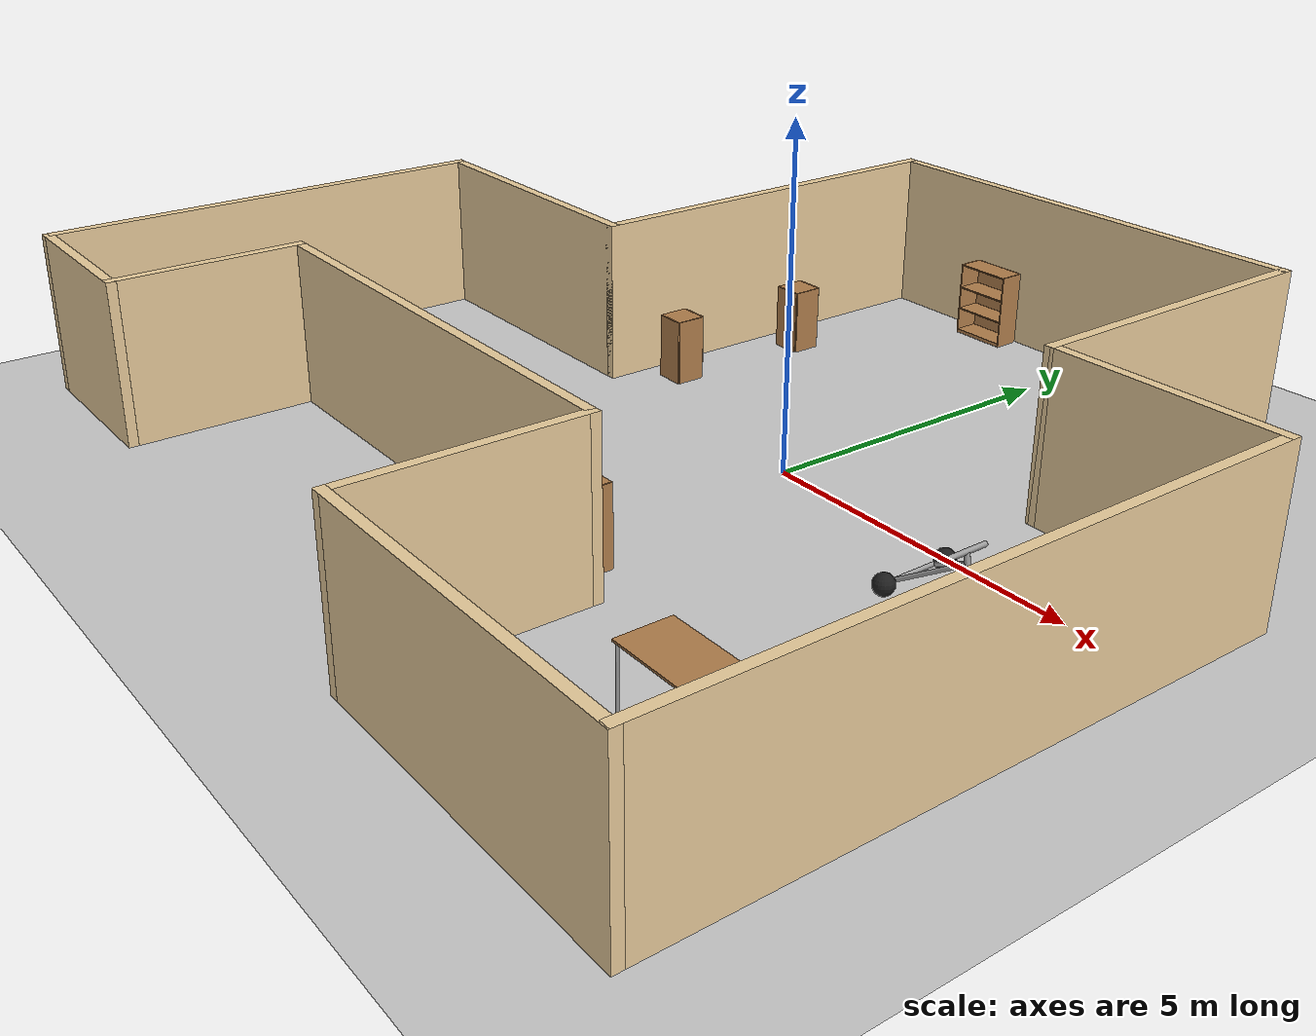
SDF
<sdf version="1.6">
 <world name="default">
  <light name="sun" type="directional">
   <pose>0 0 10 0 -0 0</pose>
   <diffuse>0.8 0.8 0.8 1</diffuse>
   <specular>0.2 0.2 0.2 1</specular>
   <attenuation>
    <range>1000</range>
    <constant>0.9</constant>
    <linear>0.01</linear>
    <quadratic>0.001</quadratic>
   </attenuation>
   <direction>-0.5 0.1 -0.9</direction>
  </light>
  <model name="ground_plane">
   <static>1</static>
   <link name="link">
    <collision name="collision">
     <geometry><plane><normal>0 0 1</normal><size>100 100</size></plane></geometry>
     <surface>
      <contact><collide_bitmask>65535</collide_bitmask></contact>
      <friction><ode><mu>100</mu><mu2>50</mu2></ode></friction>
     </surface>
    </collision>
    <visual name="visual">
     <cast_shadows>0</cast_shadows>
     <geometry><plane><normal>0 0 1</normal><size>100 100</size></plane></geometry>
     <material>
      <script><uri>file://media/materials/scripts/gazebo.material</uri><name>Gazebo/Grey</name></script>
     </material>
    </visual>
   </link>
  </model>
  <gravity>0 0 -9.8</gravity>
  <magnetic_field>6e-06 2.3e-05 -4.2e-05</magnetic_field>
  <atmosphere type="adiabatic"/>
  <physics name="default_physics" default="0" type="ode">
   <max_step_size>0.001</max_step_size>
   <real_time_factor>1</real_time_factor>
   <real_time_update_rate>1000</real_time_update_rate>
  </physics>
  <scene><ambient>0.4 0.4 0.4 1</ambient><background>0.7 0.7 0.7 1</background><shadows>1</shadows></scene>
  <spherical_coordinates>
   <surface_model>EARTH_WGS84</surface_model>
   <latitude_deg>0</latitude_deg>
   <longitude_deg>0</longitude_deg>
   <elevation>0</elevation>
   <heading_deg>0</heading_deg>
  </spherical_coordinates>
  <model name="building_big">
   <pose>-1.21774 -0.477666 0 0 -0 0</pose>
   <link name="Wall_19">
    <collision name="Wall_19_Collision">
     <geometry><box><size>7.5 0.15 2.5</size></box></geometry>
     <pose>0 0 1.25 0 -0 0</pose>
    </collision>
    <visual name="Wall_19_Visual">
     <pose>0 0 1.25 0 -0 0</pose>
     <geometry><box><size>7.5 0.15 2.5</size></box></geometry>
     <material>
      <script><uri>file://media/materials/scripts/gazebo.material</uri><name>Gazebo/Grey</name></script>
      <ambient>0.921569 0.807843 0.615686 1</ambient>
     </material>
     <meta><layer>0</layer></meta>
    </visual>
    <pose>0.625 6.975 0 0 -0 0</pose>
   </link>
   <link name="Wall_20">
    <collision name="Wall_20_Collision">
     <geometry><box><size>5 0.15 2.5</size></box></geometry>
     <pose>0 0 1.25 0 -0 0</pose>
    </collision>
    <visual name="Wall_20_Visual">
     <pose>0 0 1.25 0 -0 0</pose>
     <geometry><box><size>5 0.15 2.5</size></box></geometry>
     <material>
      <script><uri>file://media/materials/scripts/gazebo.material</uri><name>Gazebo/Grey</name></script>
      <ambient>0.921569 0.807843 0.615686 1</ambient>
     </material>
     <meta><layer>0</layer></meta>
    </visual>
    <pose>4.3 4.55 0 0 0 -1.5708</pose>
   </link>
   <link name="Wall_21">
    <collision name="Wall_21_Collision">
     <geometry><box><size>3.5 0.15 2.5</size></box></geometry>
     <pose>0 0 1.25 0 -0 0</pose>
    </collision>
    <visual name="Wall_21_Visual">
     <pose>0 0 1.25 0 -0 0</pose>
     <geometry><box><size>3.5 0.15 2.5</size></box></geometry>
     <material>
      <script><uri>file://media/materials/scripts/gazebo.material</uri><name>Gazebo/Grey</name></script>
      <ambient>0.921569 0.807843 0.615686 1</ambient>
     </material>
     <meta><layer>0</layer></meta>
    </visual>
    <pose>5.975 2.125 0 0 -0 0</pose>
   </link>
   <link name="Wall_22">
    <collision name="Wall_22_Collision">
     <geometry><box><size>9.25 0.15 2.5</size></box></geometry>
     <pose>0 0 1.25 0 -0 0</pose>
    </collision>
    <visual name="Wall_22_Visual">
     <pose>0 0 1.25 0 -0 0</pose>
     <geometry><box><size>9.25 0.15 2.5</size></box></geometry>
     <material>
      <script><uri>file://media/materials/scripts/gazebo.material</uri><name>Gazebo/Grey</name></script>
      <ambient>0.921569 0.807843 0.615686 1</ambient>
     </material>
     <meta><layer>0</layer></meta>
    </visual>
    <pose>7.65 -2.425 0 0 0 -1.5708</pose>
   </link>
   <link name="Wall_23">
    <collision name="Wall_23_Collision">
     <geometry><box><size>5.25 0.15 2.5</size></box></geometry>
     <pose>0 0 1.25 0 -0 0</pose>
    </collision>
    <visual name="Wall_23_Visual">
     <pose>0 0 1.25 0 -0 0</pose>
     <geometry><box><size>5.25 0.15 2.5</size></box></geometry>
     <material>
      <script><uri>file://media/materials/scripts/gazebo.material</uri><name>Gazebo/Grey</name></script>
      <ambient>0.921569 0.807843 0.615686 1</ambient>
     </material>
     <meta><layer>0</layer></meta>
    </visual>
    <pose>5.1 -6.975 0 0 -0 3.14159</pose>
   </link>
   <link name="Wall_24">
    <collision name="Wall_24_Collision">
     <geometry><box><size>3.5 0.15 2.5</size></box></geometry>
     <pose>0 0 1.25 0 -0 0</pose>
    </collision>
    <visual name="Wall_24_Visual">
     <pose>0 0 1.25 0 -0 0</pose>
     <geometry><box><size>3.5 0.15 2.5</size></box></geometry>
     <material>
      <script><uri>file://media/materials/scripts/gazebo.material</uri><name>Gazebo/Grey</name></script>
      <ambient>0.921569 0.807843 0.615686 1</ambient>
     </material>
     <meta><layer>0</layer></meta>
    </visual>
    <pose>2.55 -5.3 0 0 -0 1.5708</pose>
   </link>
   <link name="Wall_25">
    <collision name="Wall_25_Collision">
     <geometry><box><size>7.75 0.15 2.5</size></box></geometry>
     <pose>0 0 1.25 0 -0 0</pose>
    </collision>
    <visual name="Wall_25_Visual">
     <pose>0 0 1.25 0 -0 0</pose>
     <geometry><box><size>7.75 0.15 2.5</size></box></geometry>
     <material>
      <script><uri>file://media/materials/scripts/gazebo.material</uri><name>Gazebo/Grey</name></script>
      <ambient>0.921569 0.807843 0.615686 1</ambient>
     </material>
     <meta><layer>0</layer></meta>
    </visual>
    <pose>-1.25 -3.625 0 0 -0 3.14159</pose>
   </link>
   <link name="Wall_26">
    <collision name="Wall_26_Collision">
     <geometry><box><size>3 0.15 2.5</size></box></geometry>
     <pose>0 0 1.25 0 -0 0</pose>
    </collision>
    <visual name="Wall_26_Visual">
     <pose>0 0 1.25 0 -0 0</pose>
     <geometry><box><size>3 0.15 2.5</size></box></geometry>
     <material>
      <script><uri>file://media/materials/scripts/gazebo.material</uri><name>Gazebo/Grey</name></script>
      <ambient>0.921569 0.807843 0.615686 1</ambient>
     </material>
     <meta><layer>0</layer></meta>
    </visual>
    <pose>-5.05 -5.05 0 0 0 -1.5708</pose>
   </link>
   <link name="Wall_27">
    <collision name="Wall_27_Collision">
     <geometry><box><size>2.75 0.15 2.5</size></box></geometry>
     <pose>0 0 1.25 0 -0 0</pose>
    </collision>
    <visual name="Wall_27_Visual">
     <pose>0 0 1.25 0 -0 0</pose>
     <geometry><box><size>2.75 0.15 2.5</size></box></geometry>
     <material>
      <script><uri>file://media/materials/scripts/gazebo.material</uri><name>Gazebo/Grey</name></script>
      <ambient>0.921569 0.807843 0.615686 1</ambient>
     </material>
     <meta><layer>0</layer></meta>
    </visual>
    <pose>-6.35 -6.475 0 0 -0 3.14159</pose>
   </link>
   <link name="Wall_28">
    <collision name="Wall_28_Collision">
     <geometry><box><size>7.25 0.15 2.5</size></box></geometry>
     <pose>0 0 1.25 0 -0 0</pose>
    </collision>
    <visual name="Wall_28_Visual">
     <pose>0 0 1.25 0 -0 0</pose>
     <geometry><box><size>7.25 0.15 2.5</size></box></geometry>
     <material>
      <script><uri>file://media/materials/scripts/gazebo.material</uri><name>Gazebo/Grey</name></script>
      <ambient>0.921569 0.807843 0.615686 1</ambient>
     </material>
     <meta><layer>0</layer></meta>
    </visual>
    <pose>-7.65 -2.925 0 0 -0 1.5708</pose>
   </link>
   <link name="Wall_29">
    <collision name="Wall_29_Collision">
     <geometry><box><size>4.75 0.15 2.5</size></box></geometry>
     <pose>0 0 1.25 0 -0 0</pose>
    </collision>
    <visual name="Wall_29_Visual">
     <pose>0 0 1.25 0 -0 0</pose>
     <geometry><box><size>4.75 0.15 2.5</size></box></geometry>
     <material>
      <script><uri>file://media/materials/scripts/gazebo.material</uri><name>Gazebo/Grey</name></script>
      <ambient>0.921569 0.807843 0.615686 1</ambient>
     </material>
     <meta><layer>0</layer></meta>
    </visual>
    <pose>-5.35 0.625 0 0 -0 0</pose>
   </link>
   <link name="Wall_30">
    <collision name="Wall_30_Collision">
     <geometry><box><size>6.5 0.15 2.5</size></box></geometry>
     <pose>0 0 1.25 0 -0 0</pose>
    </collision>
    <visual name="Wall_30_Visual">
     <pose>0 0 1.25 0 -0 0</pose>
     <geometry><box><size>6.5 0.15 2.5</size></box></geometry>
     <material>
      <script><uri>file://media/materials/scripts/gazebo.material</uri><name>Gazebo/Grey</name></script>
      <ambient>0.921569 0.807843 0.615686 1</ambient>
     </material>
     <meta><layer>0</layer></meta>
    </visual>
    <pose>-3.05 3.8 0 0 -0 1.5708</pose>
   </link>
   <static>1</static>
  </model>
  <model name="cabinet">
   <static>1</static>
   <link name="cabinet_bottom_plate">
    <inertial>
     <pose>0 0 -1 0 -0 0</pose>
     <inertia><ixx>2.05</ixx><ixy>0</ixy><ixz>0</ixz><iyy>2.05</iyy><iyz>0</iyz><izz>2.05</izz></inertia>
     <mass>25</mass>
    </inertial>
    <collision name="cabinet_bottom_plate_geom">
     <pose>0 0 0.01 0 -0 0</pose>
     <geometry><box><size>0.45 0.45 0.02</size></box></geometry>
    </collision>
    <visual name="cabinet_bottom_plate_geom_visual">
     <pose>0 0 0.01 0 -0 0</pose>
     <geometry><box><size>0.45 0.45 0.02</size></box></geometry>
     <material>
      <script><uri>file://media/materials/scripts/gazebo.material</uri><name>Gazebo/Wood</name></script>
     </material>
    </visual>
    <collision name="cabinet_bottom_plate_geom_cabinet_back_plate">
     <pose>0.235 0 0.51 0 -0 0</pose>
     <geometry><box><size>0.02 0.45 1.02</size></box></geometry>
    </collision>
    <visual name="cabinet_bottom_plate_geom_cabinet_back_plate_visual">
     <pose>0.235 0 0.51 0 -0 0</pose>
     <geometry><box><size>0.02 0.45 1.02</size></box></geometry>
     <material>
      <script><uri>file://media/materials/scripts/gazebo.material</uri><name>Gazebo/Wood</name></script>
     </material>
    </visual>
    <collision name="cabinet_bottom_plate_geom_cabinet_left_plate">
     <pose>0 0.235 0.51 0 -0 0</pose>
     <geometry><box><size>0.45 0.02 1.02</size></box></geometry>
    </collision>
    <visual name="cabinet_bottom_plate_geom_cabinet_left_plate_visual">
     <pose>0 0.235 0.51 0 -0 0</pose>
     <geometry><box><size>0.45 0.02 1.02</size></box></geometry>
     <material>
      <script><uri>file://media/materials/scripts/gazebo.material</uri><name>Gazebo/Wood</name></script>
     </material>
    </visual>
    <collision name="cabinet_bottom_plate_geom_cabinet_middle_plate">
     <pose>0 0 0.51 0 -0 0</pose>
     <geometry><box><size>0.45 0.45 0.02</size></box></geometry>
    </collision>
    <visual name="cabinet_bottom_plate_geom_cabinet_middle_plate_visual">
     <pose>0 0 0.51 0 -0 0</pose>
     <geometry><box><size>0.45 0.45 0.02</size></box></geometry>
     <material>
      <script><uri>file://media/materials/scripts/gazebo.material</uri><name>Gazebo/Wood</name></script>
     </material>
    </visual>
    <collision name="cabinet_bottom_plate_geom_cabinet_right_plate">
     <pose>0 -0.235 0.51 0 -0 0</pose>
     <geometry><box><size>0.45 0.02 1.02</size></box></geometry>
    </collision>
    <visual name="cabinet_bottom_plate_geom_cabinet_right_plate_visual">
     <pose>0 -0.235 0.51 0 -0 0</pose>
     <geometry><box><size>0.45 0.02 1.02</size></box></geometry>
     <material>
      <script><uri>file://media/materials/scripts/gazebo.material</uri><name>Gazebo/Wood</name></script>
     </material>
    </visual>
    <collision name="cabinet_bottom_plate_geom_cabinet_top_plate">
     <pose>0 0 1.01 0 -0 0</pose>
     <geometry><box><size>0.45 0.45 0.02</size></box></geometry>
    </collision>
    <visual name="cabinet_bottom_plate_geom_cabinet_top_plate_visual">
     <pose>0 0 1.01 0 -0 0</pose>
     <geometry><box><size>0.45 0.45 0.02</size></box></geometry>
     <material>
      <script><uri>file://media/materials/scripts/gazebo.material</uri><name>Gazebo/Wood</name></script>
     </material>
    </visual>
   </link>
   <pose>-3.63446 1.01184 0 0 -0 0</pose>
  </model>
  <model name="cabinet_0">
   <static>1</static>
   <link name="cabinet_bottom_plate">
    <inertial>
     <pose>0 0 -1 0 -0 0</pose>
     <inertia><ixx>2.05</ixx><ixy>0</ixy><ixz>0</ixz><iyy>2.05</iyy><iyz>0</iyz><izz>2.05</izz></inertia>
     <mass>25</mass>
    </inertial>
    <collision name="cabinet_bottom_plate_geom">
     <pose>0 0 0.01 0 -0 0</pose>
     <geometry><box><size>0.45 0.45 0.02</size></box></geometry>
    </collision>
    <visual name="cabinet_bottom_plate_geom_visual">
     <pose>0 0 0.01 0 -0 0</pose>
     <geometry><box><size>0.45 0.45 0.02</size></box></geometry>
     <material>
      <script><uri>file://media/materials/scripts/gazebo.material</uri><name>Gazebo/Wood</name></script>
     </material>
    </visual>
    <collision name="cabinet_bottom_plate_geom_cabinet_back_plate">
     <pose>0.235 0 0.51 0 -0 0</pose>
     <geometry><box><size>0.02 0.45 1.02</size></box></geometry>
    </collision>
    <visual name="cabinet_bottom_plate_geom_cabinet_back_plate_visual">
     <pose>0.235 0 0.51 0 -0 0</pose>
     <geometry><box><size>0.02 0.45 1.02</size></box></geometry>
     <material>
      <script><uri>file://media/materials/scripts/gazebo.material</uri><name>Gazebo/Wood</name></script>
     </material>
    </visual>
    <collision name="cabinet_bottom_plate_geom_cabinet_left_plate">
     <pose>0 0.235 0.51 0 -0 0</pose>
     <geometry><box><size>0.45 0.02 1.02</size></box></geometry>
    </collision>
    <visual name="cabinet_bottom_plate_geom_cabinet_left_plate_visual">
     <pose>0 0.235 0.51 0 -0 0</pose>
     <geometry><box><size>0.45 0.02 1.02</size></box></geometry>
     <material>
      <script><uri>file://media/materials/scripts/gazebo.material</uri><name>Gazebo/Wood</name></script>
     </material>
    </visual>
    <collision name="cabinet_bottom_plate_geom_cabinet_middle_plate">
     <pose>0 0 0.51 0 -0 0</pose>
     <geometry><box><size>0.45 0.45 0.02</size></box></geometry>
    </collision>
    <visual name="cabinet_bottom_plate_geom_cabinet_middle_plate_visual">
     <pose>0 0 0.51 0 -0 0</pose>
     <geometry><box><size>0.45 0.45 0.02</size></box></geometry>
     <material>
      <script><uri>file://media/materials/scripts/gazebo.material</uri><name>Gazebo/Wood</name></script>
     </material>
    </visual>
    <collision name="cabinet_bottom_plate_geom_cabinet_right_plate">
     <pose>0 -0.235 0.51 0 -0 0</pose>
     <geometry><box><size>0.45 0.02 1.02</size></box></geometry>
    </collision>
    <visual name="cabinet_bottom_plate_geom_cabinet_right_plate_visual">
     <pose>0 -0.235 0.51 0 -0 0</pose>
     <geometry><box><size>0.45 0.02 1.02</size></box></geometry>
     <material>
      <script><uri>file://media/materials/scripts/gazebo.material</uri><name>Gazebo/Wood</name></script>
     </material>
    </visual>
    <collision name="cabinet_bottom_plate_geom_cabinet_top_plate">
     <pose>0 0 1.01 0 -0 0</pose>
     <geometry><box><size>0.45 0.45 0.02</size></box></geometry>
    </collision>
    <visual name="cabinet_bottom_plate_geom_cabinet_top_plate_visual">
     <pose>0 0 1.01 0 -0 0</pose>
     <geometry><box><size>0.45 0.45 0.02</size></box></geometry>
     <material>
      <script><uri>file://media/materials/scripts/gazebo.material</uri><name>Gazebo/Wood</name></script>
     </material>
    </visual>
   </link>
   <pose>-3.56706 3.36523 0 0 -0 0</pose>
  </model>
  <model name="bookshelf">
   <static>1</static>
   <link name="link">
    <inertial><mass>1</mass></inertial>
    <collision name="back">
     <pose>0 0.005 0.6 0 -0 0</pose>
     <geometry><box><size>0.9 0.01 1.2</size></box></geometry>
    </collision>
    <visual name="visual1">
     <pose>0 0.005 0.6 0 -0 0</pose>
     <geometry><box><size>0.9 0.01 1.2</size></box></geometry>
     <material>
      <script><uri>file://media/materials/scripts/gazebo.material</uri><name>Gazebo/Wood</name></script>
     </material>
    </visual>
    <collision name="left_side">
     <pose>0.45 -0.195 0.6 0 -0 0</pose>
     <geometry><box><size>0.02 0.4 1.2</size></box></geometry>
    </collision>
    <visual name="visual2">
     <pose>0.45 -0.195 0.6 0 -0 0</pose>
     <geometry><box><size>0.02 0.4 1.2</size></box></geometry>
     <material>
      <script><uri>file://media/materials/scripts/gazebo.material</uri><name>Gazebo/Wood</name></script>
     </material>
    </visual>
    <collision name="right_side">
     <pose>-0.45 -0.195 0.6 0 -0 0</pose>
     <geometry><box><size>0.02 0.4 1.2</size></box></geometry>
    </collision>
    <visual name="visual3">
     <pose>-0.45 -0.195 0.6 0 -0 0</pose>
     <geometry><box><size>0.02 0.4 1.2</size></box></geometry>
     <material>
      <script><uri>file://media/materials/scripts/gazebo.material</uri><name>Gazebo/Wood</name></script>
     </material>
    </visual>
    <collision name="bottom">
     <pose>0 -0.195 0.03 0 -0 0</pose>
     <geometry><box><size>0.88 0.4 0.06</size></box></geometry>
    </collision>
    <visual name="visual4">
     <pose>0 -0.195 0.03 0 -0 0</pose>
     <geometry><box><size>0.88 0.4 0.06</size></box></geometry>
     <material>
      <script><uri>file://media/materials/scripts/gazebo.material</uri><name>Gazebo/Wood</name></script>
     </material>
    </visual>
    <collision name="top">
     <pose>0 -0.195 1.19 0 -0 0</pose>
     <geometry><box><size>0.88 0.4 0.02</size></box></geometry>
    </collision>
    <visual name="visual5">
     <pose>0 -0.195 1.19 0 -0 0</pose>
     <geometry><box><size>0.88 0.4 0.02</size></box></geometry>
     <material>
      <script><uri>file://media/materials/scripts/gazebo.material</uri><name>Gazebo/Wood</name></script>
     </material>
    </visual>
    <collision name="low_shelf">
     <pose>0 -0.195 0.43 0 -0 0</pose>
     <geometry><box><size>0.88 0.4 0.02</size></box></geometry>
    </collision>
    <visual name="visual6">
     <pose>0 -0.195 0.43 0 -0 0</pose>
     <geometry><box><size>0.88 0.4 0.02</size></box></geometry>
     <material>
      <script><uri>file://media/materials/scripts/gazebo.material</uri><name>Gazebo/Wood</name></script>
     </material>
    </visual>
    <collision name="high_shelf">
     <pose>0 -0.195 0.8 0 -0 0</pose>
     <geometry><box><size>0.88 0.4 0.02</size></box></geometry>
    </collision>
    <visual name="visual7">
     <pose>0 -0.195 0.8 0 -0 0</pose>
     <geometry><box><size>0.88 0.4 0.02</size></box></geometry>
     <material>
      <script><uri>file://media/materials/scripts/gazebo.material</uri><name>Gazebo/Wood</name></script>
     </material>
    </visual>
   </link>
   <pose>-1.96099 6.37427 0 0 -0 0</pose>
  </model>
  <model name="bookshelf_0">
   <static>1</static>
   <link name="link">
    <inertial><mass>1</mass></inertial>
    <collision name="back">
     <pose>0 0.005 0.6 0 -0 0</pose>
     <geometry><box><size>0.9 0.01 1.2</size></box></geometry>
    </collision>
    <visual name="visual1">
     <pose>0 0.005 0.6 0 -0 0</pose>
     <geometry><box><size>0.9 0.01 1.2</size></box></geometry>
     <material>
      <script><uri>file://media/materials/scripts/gazebo.material</uri><name>Gazebo/Wood</name></script>
     </material>
    </visual>
    <collision name="left_side">
     <pose>0.45 -0.195 0.6 0 -0 0</pose>
     <geometry><box><size>0.02 0.4 1.2</size></box></geometry>
    </collision>
    <visual name="visual2">
     <pose>0.45 -0.195 0.6 0 -0 0</pose>
     <geometry><box><size>0.02 0.4 1.2</size></box></geometry>
     <material>
      <script><uri>file://media/materials/scripts/gazebo.material</uri><name>Gazebo/Wood</name></script>
     </material>
    </visual>
    <collision name="right_side">
     <pose>-0.45 -0.195 0.6 0 -0 0</pose>
     <geometry><box><size>0.02 0.4 1.2</size></box></geometry>
    </collision>
    <visual name="visual3">
     <pose>-0.45 -0.195 0.6 0 -0 0</pose>
     <geometry><box><size>0.02 0.4 1.2</size></box></geometry>
     <material>
      <script><uri>file://media/materials/scripts/gazebo.material</uri><name>Gazebo/Wood</name></script>
     </material>
    </visual>
    <collision name="bottom">
     <pose>0 -0.195 0.03 0 -0 0</pose>
     <geometry><box><size>0.88 0.4 0.06</size></box></geometry>
    </collision>
    <visual name="visual4">
     <pose>0 -0.195 0.03 0 -0 0</pose>
     <geometry><box><size>0.88 0.4 0.06</size></box></geometry>
     <material>
      <script><uri>file://media/materials/scripts/gazebo.material</uri><name>Gazebo/Wood</name></script>
     </material>
    </visual>
    <collision name="top">
     <pose>0 -0.195 1.19 0 -0 0</pose>
     <geometry><box><size>0.88 0.4 0.02</size></box></geometry>
    </collision>
    <visual name="visual5">
     <pose>0 -0.195 1.19 0 -0 0</pose>
     <geometry><box><size>0.88 0.4 0.02</size></box></geometry>
     <material>
      <script><uri>file://media/materials/scripts/gazebo.material</uri><name>Gazebo/Wood</name></script>
     </material>
    </visual>
    <collision name="low_shelf">
     <pose>0 -0.195 0.43 0 -0 0</pose>
     <geometry><box><size>0.88 0.4 0.02</size></box></geometry>
    </collision>
    <visual name="visual6">
     <pose>0 -0.195 0.43 0 -0 0</pose>
     <geometry><box><size>0.88 0.4 0.02</size></box></geometry>
     <material>
      <script><uri>file://media/materials/scripts/gazebo.material</uri><name>Gazebo/Wood</name></script>
     </material>
    </visual>
    <collision name="high_shelf">
     <pose>0 -0.195 0.8 0 -0 0</pose>
     <geometry><box><size>0.88 0.4 0.02</size></box></geometry>
    </collision>
    <visual name="visual7">
     <pose>0 -0.195 0.8 0 -0 0</pose>
     <geometry><box><size>0.88 0.4 0.02</size></box></geometry>
     <material>
      <script><uri>file://media/materials/scripts/gazebo.material</uri><name>Gazebo/Wood</name></script>
     </material>
    </visual>
   </link>
   <pose>2.81882 3.2603 0 0 0 -1.56333</pose>
  </model>
  <model name="table">
   <static>1</static>
   <link name="link">
    <collision name="surface">
     <pose>0 0 1 0 -0 0</pose>
     <geometry><box><size>1.5 0.8 0.03</size></box></geometry>
     <surface><friction><ode><mu>0.6</mu><mu2>0.6</mu2></ode></friction></surface>
    </collision>
    <visual name="visual1">
     <pose>0 0 1 0 -0 0</pose>
     <geometry><box><size>1.5 0.8 0.03</size></box></geometry>
     <material>
      <script><uri>file://media/materials/scripts/gazebo.material</uri><name>Gazebo/Wood</name></script>
     </material>
    </visual>
    <collision name="front_left_leg">
     <pose>0.68 0.38 0.5 0 -0 0</pose>
     <geometry><cylinder><radius>0.02</radius><length>1</length></cylinder></geometry>
    </collision>
    <visual name="front_left_leg">
     <pose>0.68 0.38 0.5 0 -0 0</pose>
     <geometry><cylinder><radius>0.02</radius><length>1</length></cylinder></geometry>
     <material>
      <script><uri>file://media/materials/scripts/gazebo.material</uri><name>Gazebo/Grey</name></script>
     </material>
    </visual>
    <collision name="front_right_leg">
     <pose>0.68 -0.38 0.5 0 -0 0</pose>
     <geometry><cylinder><radius>0.02</radius><length>1</length></cylinder></geometry>
    </collision>
    <visual name="front_right_leg">
     <pose>0.68 -0.38 0.5 0 -0 0</pose>
     <geometry><cylinder><radius>0.02</radius><length>1</length></cylinder></geometry>
     <material>
      <script><uri>file://media/materials/scripts/gazebo.material</uri><name>Gazebo/Grey</name></script>
     </material>
    </visual>
    <collision name="back_right_leg">
     <pose>-0.68 -0.38 0.5 0 -0 0</pose>
     <geometry><cylinder><radius>0.02</radius><length>1</length></cylinder></geometry>
    </collision>
    <visual name="back_right_leg">
     <pose>-0.68 -0.38 0.5 0 -0 0</pose>
     <geometry><cylinder><radius>0.02</radius><length>1</length></cylinder></geometry>
     <material>
      <script><uri>file://media/materials/scripts/gazebo.material</uri><name>Gazebo/Grey</name></script>
     </material>
    </visual>
    <collision name="back_left_leg">
     <pose>-0.68 0.38 0.5 0 -0 0</pose>
     <geometry><cylinder><radius>0.02</radius><length>1</length></cylinder></geometry>
    </collision>
    <visual name="back_left_leg">
     <pose>-0.68 0.38 0.5 0 -0 0</pose>
     <geometry><cylinder><radius>0.02</radius><length>1</length></cylinder></geometry>
     <material>
      <script><uri>file://media/materials/scripts/gazebo.material</uri><name>Gazebo/Grey</name></script>
     </material>
    </visual>
   </link>
   <pose>-4.73266 -3.01291 0 0 -0 0</pose>
  </model>
  <model name="table_0">
   <static>1</static>
   <link name="link">
    <collision name="surface">
     <pose>0 0 1 0 -0 0</pose>
     <geometry><box><size>1.5 0.8 0.03</size></box></geometry>
     <surface><friction><ode><mu>0.6</mu><mu2>0.6</mu2></ode></friction></surface>
    </collision>
    <visual name="visual1">
     <pose>0 0 1 0 -0 0</pose>
     <geometry><box><size>1.5 0.8 0.03</size></box></geometry>
     <material>
      <script><uri>file://media/materials/scripts/gazebo.material</uri><name>Gazebo/Wood</name></script>
     </material>
    </visual>
    <collision name="front_left_leg">
     <pose>0.68 0.38 0.5 0 -0 0</pose>
     <geometry><cylinder><radius>0.02</radius><length>1</length></cylinder></geometry>
    </collision>
    <visual name="front_left_leg">
     <pose>0.68 0.38 0.5 0 -0 0</pose>
     <geometry><cylinder><radius>0.02</radius><length>1</length></cylinder></geometry>
     <material>
      <script><uri>file://media/materials/scripts/gazebo.material</uri><name>Gazebo/Grey</name></script>
     </material>
    </visual>
    <collision name="front_right_leg">
     <pose>0.68 -0.38 0.5 0 -0 0</pose>
     <geometry><cylinder><radius>0.02</radius><length>1</length></cylinder></geometry>
    </collision>
    <visual name="front_right_leg">
     <pose>0.68 -0.38 0.5 0 -0 0</pose>
     <geometry><cylinder><radius>0.02</radius><length>1</length></cylinder></geometry>
     <material>
      <script><uri>file://media/materials/scripts/gazebo.material</uri><name>Gazebo/Grey</name></script>
     </material>
    </visual>
    <collision name="back_right_leg">
     <pose>-0.68 -0.38 0.5 0 -0 0</pose>
     <geometry><cylinder><radius>0.02</radius><length>1</length></cylinder></geometry>
    </collision>
    <visual name="back_right_leg">
     <pose>-0.68 -0.38 0.5 0 -0 0</pose>
     <geometry><cylinder><radius>0.02</radius><length>1</length></cylinder></geometry>
     <material>
      <script><uri>file://media/materials/scripts/gazebo.material</uri><name>Gazebo/Grey</name></script>
     </material>
    </visual>
    <collision name="back_left_leg">
     <pose>-0.68 0.38 0.5 0 -0 0</pose>
     <geometry><cylinder><radius>0.02</radius><length>1</length></cylinder></geometry>
    </collision>
    <visual name="back_left_leg">
     <pose>-0.68 0.38 0.5 0 -0 0</pose>
     <geometry><cylinder><radius>0.02</radius><length>1</length></cylinder></geometry>
     <material>
      <script><uri>file://media/materials/scripts/gazebo.material</uri><name>Gazebo/Grey</name></script>
     </material>
    </visual>
   </link>
   <pose>4.21781 -4.95946 0 0 -0 0</pose>
  </model>
  <model name="trisphere_cycle">
   <link name="frame">
    <pose>-0.408559 0 0.385023 0 -0.522021 0</pose>
    <inertial>
     <mass>10</mass>
     <inertia><ixx>0.228</ixx><iyy>0.743521</iyy><izz>0.965521</izz><ixy>0</ixy><ixz>0</ixz><iyz>0</iyz></inertia>
    </inertial>
    <collision name="axle_collision">
     <pose>-0.471335 0 0 1.5708 -0 0</pose>
     <geometry><cylinder><length>1.03923</length><radius>0.03</radius></cylinder></geometry>
    </collision>
    <visual name="axle_visual">
     <pose>-0.471335 0 0 1.5708 -0 0</pose>
     <geometry><cylinder><length>1.03923</length><radius>0.03</radius></cylinder></geometry>
     <material>
      <script><uri>file://media/materials/scripts/gazebo.material</uri><name>Gazebo/Grey</name></script>
     </material>
    </visual>
    <collision name="frame_left_collision">
     <pose>0 0.171552 0 -2.79253 1.57079 3.14159</pose>
     <geometry><cylinder><length>1.00317</length><radius>0.03</radius></cylinder></geometry>
    </collision>
    <visual name="frame_left_visual">
     <pose>0 0.171552 0 -2.79253 1.57079 3.14159</pose>
     <geometry><cylinder><length>1.00317</length><radius>0.03</radius></cylinder></geometry>
     <material>
      <script><uri>file://media/materials/scripts/gazebo.material</uri><name>Gazebo/Grey</name></script>
     </material>
    </visual>
    <collision name="frame_right_collision">
     <pose>0 -0.171552 0 2.79253 1.57079 -3.14159</pose>
     <geometry><cylinder><length>1.00317</length><radius>0.03</radius></cylinder></geometry>
    </collision>
    <visual name="frame_right_visual">
     <pose>0 -0.171552 0 2.79253 1.57079 -3.14159</pose>
     <geometry><cylinder><length>1.00317</length><radius>0.03</radius></cylinder></geometry>
     <material>
      <script><uri>file://media/materials/scripts/gazebo.material</uri><name>Gazebo/Grey</name></script>
     </material>
    </visual>
   </link>
   <link name="fork">
    <pose>0.041441 0 0.385023 0 -0.174533 0</pose>
    <inertial>
     <mass>3</mass>
     <inertia>
      <ixx>0.158203</ixx>
      <iyy>0.0583594</iyy>
      <izz>0.102656</izz>
      <ixy>0</ixy>
      <ixz>0</ixz>
      <iyz>0</iyz>
     </inertia>
    </inertial>
    <collision name="handlebars_collision">
     <pose>0 0 0.397748 1.5708 -0 0</pose>
     <geometry><cylinder><length>0.636396</length><radius>0.0375</radius></cylinder></geometry>
    </collision>
    <visual name="handlebars_visual">
     <pose>0 0 0.397748 1.5708 -0 0</pose>
     <geometry><cylinder><length>0.636396</length><radius>0.0375</radius></cylinder></geometry>
     <material>
      <script><uri>file://media/materials/scripts/gazebo.material</uri><name>Gazebo/Grey</name></script>
     </material>
    </visual>
    <collision name="headtube_collision">
     <pose>0 0 0.238649 0 -0 0</pose>
     <geometry><cylinder><length>0.318198</length><radius>0.0375</radius></cylinder></geometry>
    </collision>
    <visual name="headtube_visual">
     <pose>0 0 0.238649 0 -0 0</pose>
     <geometry><cylinder><length>0.318198</length><radius>0.0375</radius></cylinder></geometry>
     <material>
      <script><uri>file://media/materials/scripts/gazebo.material</uri><name>Gazebo/Grey</name></script>
     </material>
    </visual>
    <collision name="spindle_collision">
     <pose>0 0 -0.238649 1.5708 -0 0</pose>
     <geometry><cylinder><length>0.636396</length><radius>0.015</radius></cylinder></geometry>
    </collision>
    <visual name="spindle_visual">
     <pose>0 0 -0.238649 1.5708 -0 0</pose>
     <geometry><cylinder><length>0.636396</length><radius>0.015</radius></cylinder></geometry>
     <material>
      <script><uri>file://media/materials/scripts/gazebo.material</uri><name>Gazebo/Grey</name></script>
     </material>
    </visual>
    <collision name="fork_left_collision">
     <pose>0 0.159099 -0.07955 0.785398 -0 0</pose>
     <geometry><cylinder><length>0.45</length><radius>0.0375</radius></cylinder></geometry>
    </collision>
    <visual name="fork_left_visual">
     <pose>0 0.159099 -0.07955 0.785398 -0 0</pose>
     <geometry><cylinder><length>0.45</length><radius>0.0375</radius></cylinder></geometry>
     <material>
      <script><uri>file://media/materials/scripts/gazebo.material</uri><name>Gazebo/Grey</name></script>
     </material>
    </visual>
    <collision name="fork_right_collision">
     <pose>0 -0.159099 -0.07955 -0.785398 0 0</pose>
     <geometry><cylinder><length>0.45</length><radius>0.0375</radius></cylinder></geometry>
    </collision>
    <visual name="fork_right_visual">
     <pose>0 -0.159099 -0.07955 -0.785398 0 0</pose>
     <geometry><cylinder><length>0.45</length><radius>0.0375</radius></cylinder></geometry>
     <material>
      <script><uri>file://media/materials/scripts/gazebo.material</uri><name>Gazebo/Grey</name></script>
     </material>
    </visual>
   </link>
   <link name="wheel_front">
    <pose>0.082882 0 0.15 0 -0 0</pose>
    <inertial>
     <mass>0.5</mass>
     <inertia><ixx>0.0045</ixx><iyy>0.0045</iyy><izz>0.0045</izz><ixy>0</ixy><ixz>0</ixz><iyz>0</iyz></inertia>
    </inertial>
    <collision name="collision">
     <geometry><sphere><radius>0.15</radius></sphere></geometry>
     <surface><contact><ode><kp>1e+08</kp><kd>1</kd><min_depth>0.0005</min_depth></ode></contact></surface>
    </collision>
    <visual name="visual">
     <geometry><sphere><radius>0.15</radius></sphere></geometry>
     <material>
      <script><uri>file://media/materials/scripts/gazebo.material</uri><name>Gazebo/Black</name></script>
     </material>
    </visual>
   </link>
   <joint name="wheel_front_steer" type="revolute">
    <parent>frame</parent>
    <child>fork</child>
    <axis>
     <xyz>0 0 1</xyz>
     <limit><lower>-0.959931</lower><upper>0.959931</upper></limit>
     <use_parent_model_frame>0</use_parent_model_frame>
     <dynamics><spring_reference>0</spring_reference><spring_stiffness>0</spring_stiffness></dynamics>
    </axis>
   </joint>
   <joint name="wheel_front_spin" type="revolute">
    <parent>fork</parent>
    <child>wheel_front</child>
    <axis>
     <xyz>0 1 0</xyz>
     <use_parent_model_frame>0</use_parent_model_frame>
     <limit><lower>-1e+16</lower><upper>1e+16</upper></limit>
     <dynamics><spring_reference>0</spring_reference><spring_stiffness>0</spring_stiffness></dynamics>
    </axis>
   </joint>
   <link name="wheel_rear_left">
    <pose>-0.817118 0.519615 0.15 0 -0 0</pose>
    <inertial>
     <mass>0.5</mass>
     <inertia><ixx>0.0045</ixx><iyy>0.0045</iyy><izz>0.0045</izz><ixy>0</ixy><ixz>0</ixz><iyz>0</iyz></inertia>
    </inertial>
    <collision name="collision">
     <geometry><sphere><radius>0.15</radius></sphere></geometry>
     <surface><contact><ode><kp>1e+08</kp><kd>1</kd><min_depth>0.0005</min_depth></ode></contact></surface>
    </collision>
    <visual name="visual">
     <geometry><sphere><radius>0.15</radius></sphere></geometry>
     <material>
      <script><uri>file://media/materials/scripts/gazebo.material</uri><name>Gazebo/Black</name></script>
     </material>
    </visual>
   </link>
   <joint name="wheel_rear_left_spin" type="revolute">
    <parent>frame</parent>
    <child>wheel_rear_left</child>
    <axis>
     <xyz>0 1 0</xyz>
     <use_parent_model_frame>0</use_parent_model_frame>
     <limit><lower>-1e+16</lower><upper>1e+16</upper></limit>
     <dynamics><spring_reference>0</spring_reference><spring_stiffness>0</spring_stiffness></dynamics>
    </axis>
   </joint>
   <link name="wheel_rear_right">
    <pose>-0.817118 -0.519615 0.15 0 -0 0</pose>
    <inertial>
     <mass>0.5</mass>
     <inertia><ixx>0.0045</ixx><iyy>0.0045</iyy><izz>0.0045</izz><ixy>0</ixy><ixz>0</ixz><iyz>0</iyz></inertia>
    </inertial>
    <collision name="collision">
     <geometry><sphere><radius>0.15</radius></sphere></geometry>
     <surface><contact><ode><kp>1e+08</kp><kd>1</kd><min_depth>0.0005</min_depth></ode></contact></surface>
    </collision>
    <visual name="visual">
     <geometry><sphere><radius>0.15</radius></sphere></geometry>
     <material>
      <script><uri>file://media/materials/scripts/gazebo.material</uri><name>Gazebo/Black</name></script>
     </material>
    </visual>
   </link>
   <joint name="wheel_rear_right_spin" type="revolute">
    <parent>frame</parent>
    <child>wheel_rear_right</child>
    <axis>
     <xyz>0 1 0</xyz>
     <use_parent_model_frame>0</use_parent_model_frame>
     <limit><lower>-1e+16</lower><upper>1e+16</upper></limit>
     <dynamics><spring_reference>0</spring_reference><spring_stiffness>0</spring_stiffness></dynamics>
    </axis>
   </joint>
   <pose>4.07237 -0.707499 0 0 -0 0</pose>
  </model>
  <model name="bookshelf_1">
   <static>1</static>
   <link name="link">
    <inertial><mass>1</mass></inertial>
    <collision name="back">
     <pose>0 0.005 0.6 0 -0 0</pose>
     <geometry><box><size>0.9 0.01 1.2</size></box></geometry>
    </collision>
    <visual name="visual1">
     <pose>0 0.005 0.6 0 -0 0</pose>
     <geometry><box><size>0.9 0.01 1.2</size></box></geometry>
     <material>
      <script><uri>file://media/materials/scripts/gazebo.material</uri><name>Gazebo/Wood</name></script>
     </material>
    </visual>
    <collision name="left_side">
     <pose>0.45 -0.195 0.6 0 -0 0</pose>
     <geometry><box><size>0.02 0.4 1.2</size></box></geometry>
    </collision>
    <visual name="visual2">
     <pose>0.45 -0.195 0.6 0 -0 0</pose>
     <geometry><box><size>0.02 0.4 1.2</size></box></geometry>
     <material>
      <script><uri>file://media/materials/scripts/gazebo.material</uri><name>Gazebo/Wood</name></script>
     </material>
    </visual>
    <collision name="right_side">
     <pose>-0.45 -0.195 0.6 0 -0 0</pose>
     <geometry><box><size>0.02 0.4 1.2</size></box></geometry>
    </collision>
    <visual name="visual3">
     <pose>-0.45 -0.195 0.6 0 -0 0</pose>
     <geometry><box><size>0.02 0.4 1.2</size></box></geometry>
     <material>
      <script><uri>file://media/materials/scripts/gazebo.material</uri><name>Gazebo/Wood</name></script>
     </material>
    </visual>
    <collision name="bottom">
     <pose>0 -0.195 0.03 0 -0 0</pose>
     <geometry><box><size>0.88 0.4 0.06</size></box></geometry>
    </collision>
    <visual name="visual4">
     <pose>0 -0.195 0.03 0 -0 0</pose>
     <geometry><box><size>0.88 0.4 0.06</size></box></geometry>
     <material>
      <script><uri>file://media/materials/scripts/gazebo.material</uri><name>Gazebo/Wood</name></script>
     </material>
    </visual>
    <collision name="top">
     <pose>0 -0.195 1.19 0 -0 0</pose>
     <geometry><box><size>0.88 0.4 0.02</size></box></geometry>
    </collision>
    <visual name="visual5">
     <pose>0 -0.195 1.19 0 -0 0</pose>
     <geometry><box><size>0.88 0.4 0.02</size></box></geometry>
     <material>
      <script><uri>file://media/materials/scripts/gazebo.material</uri><name>Gazebo/Wood</name></script>
     </material>
    </visual>
    <collision name="low_shelf">
     <pose>0 -0.195 0.43 0 -0 0</pose>
     <geometry><box><size>0.88 0.4 0.02</size></box></geometry>
    </collision>
    <visual name="visual6">
     <pose>0 -0.195 0.43 0 -0 0</pose>
     <geometry><box><size>0.88 0.4 0.02</size></box></geometry>
     <material>
      <script><uri>file://media/materials/scripts/gazebo.material</uri><name>Gazebo/Wood</name></script>
     </material>
    </visual>
    <collision name="high_shelf">
     <pose>0 -0.195 0.8 0 -0 0</pose>
     <geometry><box><size>0.88 0.4 0.02</size></box></geometry>
    </collision>
    <visual name="visual7">
     <pose>0 -0.195 0.8 0 -0 0</pose>
     <geometry><box><size>0.88 0.4 0.02</size></box></geometry>
     <material>
      <script><uri>file://media/materials/scripts/gazebo.material</uri><name>Gazebo/Wood</name></script>
     </material>
    </visual>
   </link>
   <pose>0.358073 -3.86265 0 0 0 -3.13559</pose>
  </model>
 </world>
</sdf>
